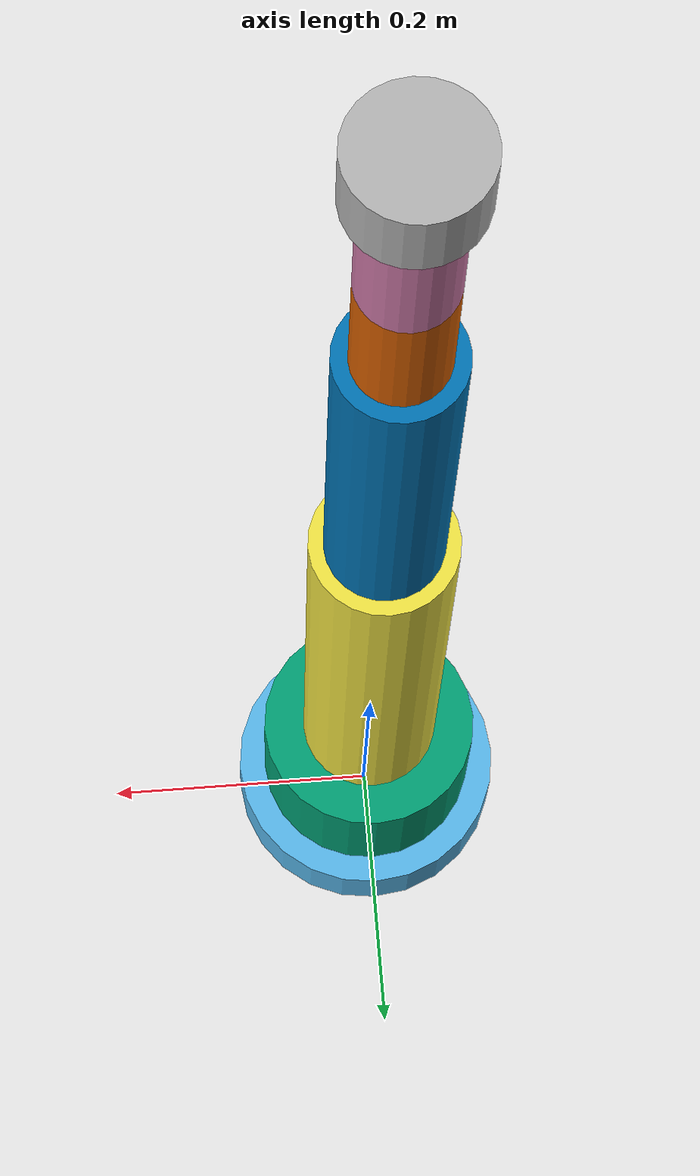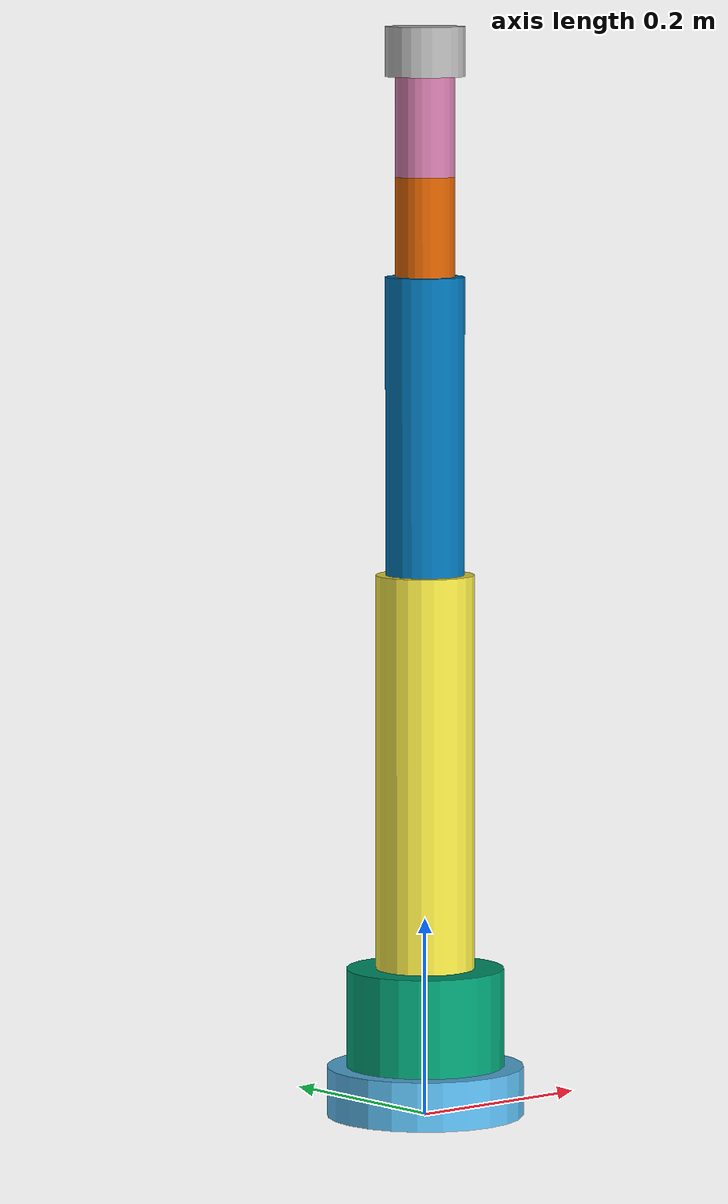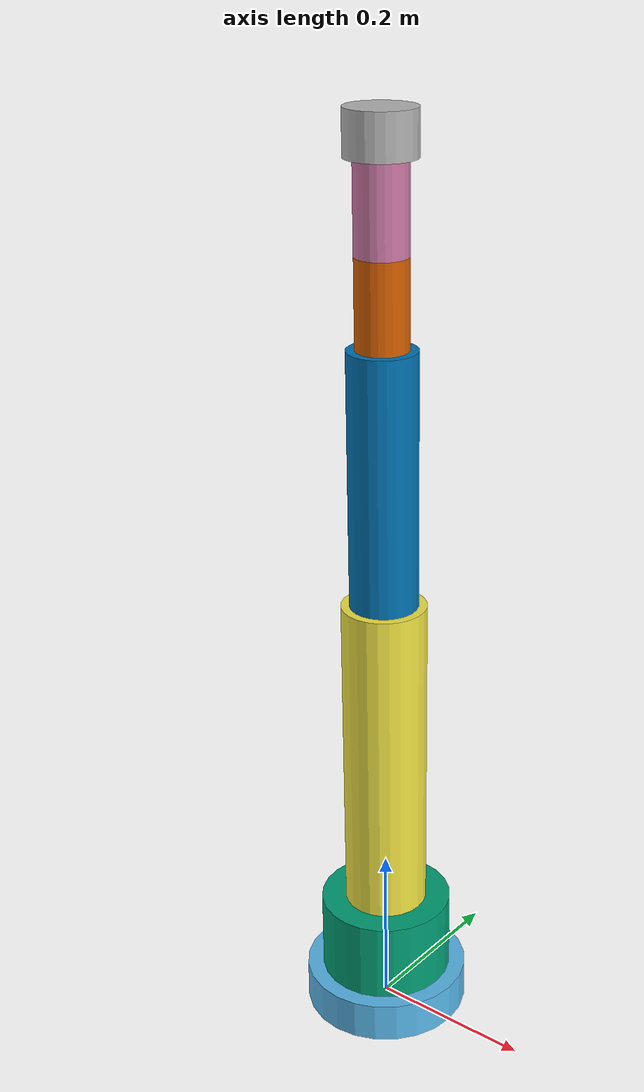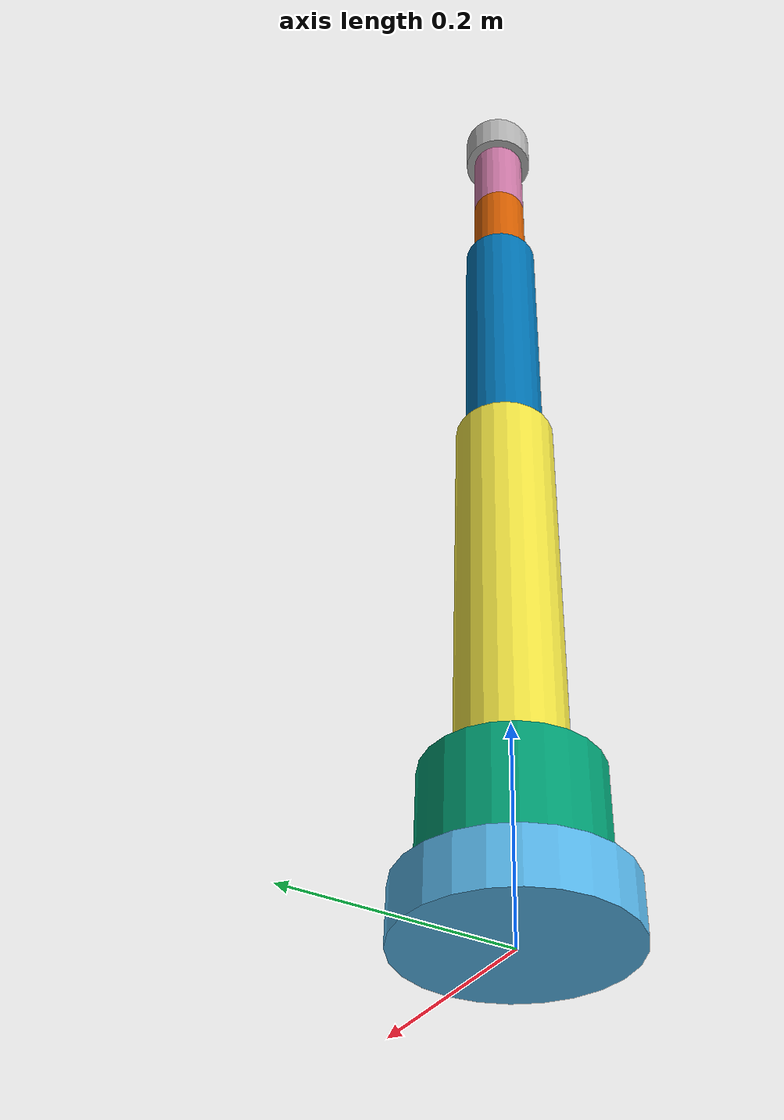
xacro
<?xml version="1.0"?>
<robot name="six_dof_arm" xmlns:xacro="http://www.ros.org/wiki/xacro">

    <xacro:macro name="cylinder_inertia" params="m r h">
        <inertia ixx="${m*(3*r*r+h*h)/12}" ixy="0" ixz="0" iyy="${m*(3*r*r+h*h)/12}" iyz="0" izz="${m*r*r/2}" />
    </xacro:macro>

    <link name="world"/>

    <joint name="base_joint" type="fixed">
        <parent link="world"/><child link="base_link"/>
        <origin xyz="0 0 0" rpy="0 0 0"/>
    </joint>

    <link name="base_link">
        <visual><origin xyz="0 0 0.025" rpy="0 0 0"/><geometry><cylinder radius="0.1" length="0.05"/></geometry></visual>
        <collision><origin xyz="0 0 0.025" rpy="0 0 0"/><geometry><cylinder radius="0.1" length="0.05"/></geometry></collision>
        <inertial><origin xyz="0 0 0.025" rpy="0 0 0"/><mass value="5.0"/><xacro:cylinder_inertia m="5.0" r="0.1" h="0.05"/></inertial>
    </link>

    <joint name="joint_1" type="revolute">
        <parent link="base_link"/><child link="link_1"/>
        <origin xyz="0 0 0.05" rpy="0 0 0"/><axis xyz="0 0 1"/>
        <limit lower="-3.14" upper="3.14" effort="500.0" velocity="2.0"/><dynamics damping="20.0" friction="20.0"/>
    </joint>
    <link name="link_1">
        <visual><origin xyz="0 0 0.05" rpy="0 0 0"/><geometry><cylinder radius="0.08" length="0.1"/></geometry></visual>
        <collision><origin xyz="0 0 0.05" rpy="0 0 0"/><geometry><cylinder radius="0.08" length="0.1"/></geometry></collision>
        <inertial><origin xyz="0 0 0.05" rpy="0 0 0"/><mass value="2.0"/><xacro:cylinder_inertia m="2.0" r="0.08" h="0.1"/></inertial>
    </link>

    <joint name="joint_2" type="revolute">
        <parent link="link_1"/><child link="link_2"/>
        <origin xyz="0 0 0.1" rpy="0 0 0"/><axis xyz="0 1 0"/>
        <limit lower="-3.14" upper="3.14" effort="500.0" velocity="2.0"/><dynamics damping="20.0" friction="20.0"/>
    </joint>
    <link name="link_2">
        <visual><origin xyz="0 0 0.2" rpy="0 0 0"/><geometry><cylinder radius="0.05" length="0.4"/></geometry></visual>
        <collision><origin xyz="0 0 0.2" rpy="0 0 0"/><geometry><cylinder radius="0.05" length="0.4"/></geometry></collision>
        <inertial><origin xyz="0 0 0.2" rpy="0 0 0"/><mass value="1.5"/><xacro:cylinder_inertia m="1.5" r="0.05" h="0.4"/></inertial>
    </link>

    <joint name="joint_3" type="revolute">
        <parent link="link_2"/><child link="link_3"/>
        <origin xyz="0 0 0.4" rpy="0 0 0"/><axis xyz="0 1 0"/>
        <limit lower="-3.14" upper="3.14" effort="300.0" velocity="2.0"/><dynamics damping="10.0" friction="10.0"/>
    </joint>
    <link name="link_3">
        <visual><origin xyz="0 0 0.15" rpy="0 0 0"/><geometry><cylinder radius="0.04" length="0.3"/></geometry></visual>
        <collision><origin xyz="0 0 0.15" rpy="0 0 0"/><geometry><cylinder radius="0.04" length="0.3"/></geometry></collision>
        <inertial><origin xyz="0 0 0.15" rpy="0 0 0"/><mass value="1.0"/><xacro:cylinder_inertia m="1.0" r="0.04" h="0.3"/></inertial>
    </link>

    <joint name="joint_4" type="revolute">
        <parent link="link_3"/><child link="link_4"/>
        <origin xyz="0 0 0.3" rpy="0 0 0"/><axis xyz="0 1 0"/>
        <limit lower="-3.14" upper="3.14" effort="100.0" velocity="2.0"/><dynamics damping="5.0" friction="5.0"/>
    </joint>
    <link name="link_4">
        <visual><origin xyz="0 0 0.05" rpy="0 0 0"/><geometry><cylinder radius="0.03" length="0.1"/></geometry></visual>
        <collision><origin xyz="0 0 0.05" rpy="0 0 0"/><geometry><cylinder radius="0.03" length="0.1"/></geometry></collision>
        <inertial><origin xyz="0 0 0.05" rpy="0 0 0"/><mass value="0.5"/><xacro:cylinder_inertia m="0.5" r="0.03" h="0.1"/></inertial>
    </link>

    <joint name="joint_5" type="revolute">
        <parent link="link_4"/><child link="link_5"/>
        <origin xyz="0 0 0.1" rpy="0 0 0"/><axis xyz="0 0 1"/>
        <limit lower="-3.14" upper="3.14" effort="100.0" velocity="2.0"/><dynamics damping="2.0" friction="2.0"/>
    </joint>
    <link name="link_5">
        <visual><origin xyz="0 0 0.05" rpy="0 0 0"/><geometry><cylinder radius="0.03" length="0.1"/></geometry></visual>
        <collision><origin xyz="0 0 0.05" rpy="0 0 0"/><geometry><cylinder radius="0.03" length="0.1"/></geometry></collision>
        <inertial><origin xyz="0 0 0.05" rpy="0 0 0"/><mass value="0.2"/><xacro:cylinder_inertia m="0.2" r="0.03" h="0.1"/></inertial>
    </link>

    <joint name="joint_6" type="revolute">
        <parent link="link_5"/><child link="link_6"/>
        <origin xyz="0 0 0.1" rpy="0 0 0"/><axis xyz="1 0 0"/>
        <limit lower="-3.14" upper="3.14" effort="100.0" velocity="2.0"/><dynamics damping="1.0" friction="1.0"/>
    </joint>
    <link name="link_6">
        <visual><origin xyz="0 0 0.025" rpy="0 0 0"/><geometry><cylinder radius="0.04" length="0.05"/></geometry></visual>
        <collision><origin xyz="0 0 0.025" rpy="0 0 0"/><geometry><cylinder radius="0.04" length="0.05"/></geometry></collision>
        <inertial><origin xyz="0 0 0.025" rpy="0 0 0"/><mass value="0.1"/><xacro:cylinder_inertia m="0.1" r="0.04" h="0.05"/></inertial>
    </link>

    <ros2_control name="GazeboSystem" type="system">
        <hardware><plugin>gazebo_ros2_control/GazeboSystem</plugin></hardware>
        <joint name="joint_1"><command_interface name="position"/><state_interface name="position"/><state_interface name="velocity"/></joint>
        <joint name="joint_2"><command_interface name="position"/><state_interface name="position"/><state_interface name="velocity"/></joint>
        <joint name="joint_3"><command_interface name="position"/><state_interface name="position"/><state_interface name="velocity"/></joint>
        <joint name="joint_4"><command_interface name="position"/><state_interface name="position"/><state_interface name="velocity"/></joint>
        <joint name="joint_5"><command_interface name="position"/><state_interface name="position"/><state_interface name="velocity"/></joint>
        <joint name="joint_6"><command_interface name="position"/><state_interface name="position"/><state_interface name="velocity"/></joint>
    </ros2_control>

    <gazebo>
        <plugin name="gazebo_ros2_control" filename="libgazebo_ros2_control.so">
            <parameters>$(find my_gazebo_arm)/config/controllers.yaml</parameters>
        </plugin>
    </gazebo>

</robot>
